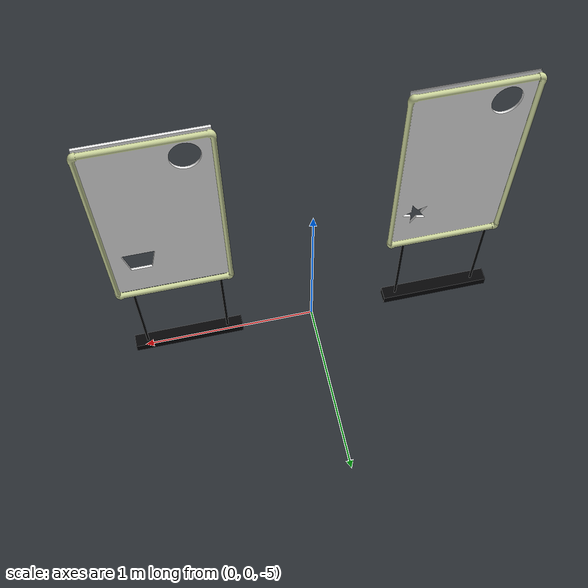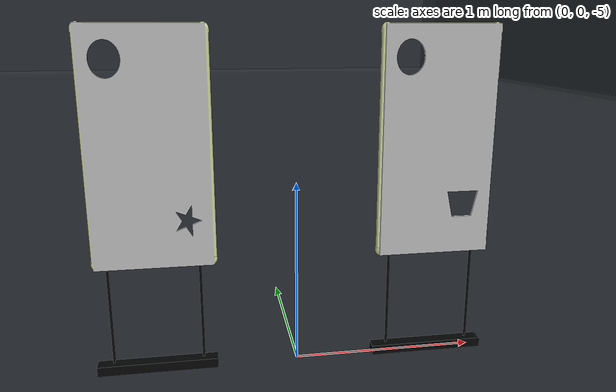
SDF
<?xml version="1.0" ?>
<sdf version="1.9">
    <world name="task_torpedo">
        <light type="directional" name="sun">
            <cast_shadows>true</cast_shadows>
            <pose>0 0 10 0 0 0</pose>
            <diffuse>0.8 0.8 0.8 1</diffuse>
            <specular>0.2 0.2 0.2 1</specular>
            <attenuation>
                <range>1000</range>
                <constant>0.9</constant>
                <linear>0.01</linear>
                <quadratic>0.001</quadratic>
            </attenuation>
            <direction>-0.5 0.1 -0.9</direction>
        </light>

        <model name="simple_pool">
            <static>true</static>
            <link name="link">
                <visual name="pool_visual">
                    <geometry>
                        <mesh>
                            <uri>../../../assets/common/simple_pool/simple_pool.dae</uri>
                        </mesh>
                    </geometry>
                </visual>
                <collision name="pool_collision">
                    <geometry>
                        <mesh>
                            <uri>../../../assets/common/simple_pool/simple_pool.dae</uri>
                        </mesh>
                    </geometry>
                </collision>
            </link>
        </model>

        <model name="torpedo_bootlegger">
            <static>true</static>
            <link name="torpedo_bootlegger">
                <pose> -0.75 0 -5 0 0 -1.5708</pose>
                <visual name="torpedo_bootlegger_visual">
                    <geometry>
                        <mesh>
                            <uri>../../../assets/robosub2022/torpedo/torpedo_bootlegger.dae</uri>
                        </mesh>
                    </geometry>
                </visual>
                <collision name="torpedo_bootlegger_collision">
                    <geometry>
                        <mesh>
                            <uri>../../../assets/robosub2022/torpedo/torpedo_bootlegger.dae</uri>
                        </mesh>
                    </geometry>
                </collision>
            </link>
        </model>

        <model name="torpedo_gman">
            <static>true</static>
            <link name="buoy_gman">
                <pose>0.75 0 -5 0 0 -1.5708</pose>
                <visual name="torpedo_gman_visual">
                    <geometry>
                        <mesh>
                            <uri>../../../assets/robosub2022/torpedo/torpedo_gman.dae</uri>
                        </mesh>
                    </geometry>
                </visual>
                <collision name="torpedo_gman_collision">
                    <geometry>
                        <mesh>
                            <uri>../../../assets/robosub2022/torpedo/torpedo_gman.dae</uri>
                        </mesh>
                    </geometry>
                </collision>
            </link>
        </model>

    </world>
</sdf>
